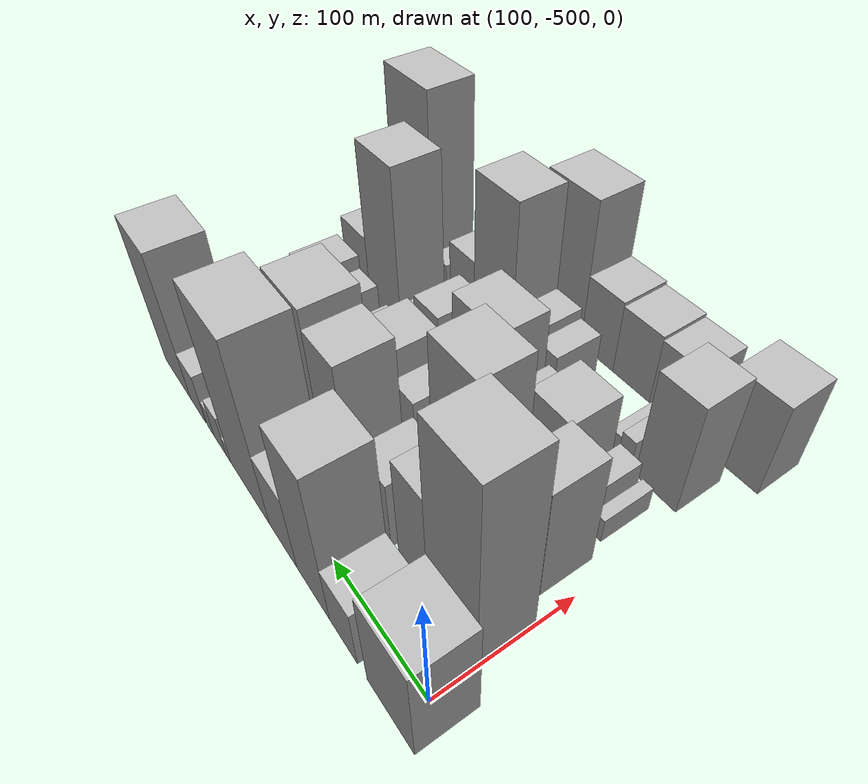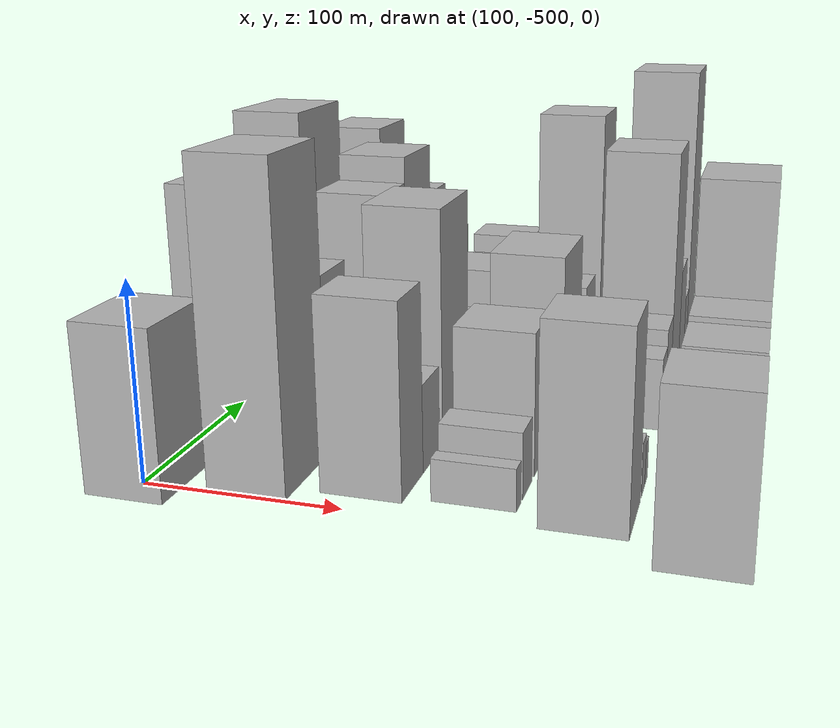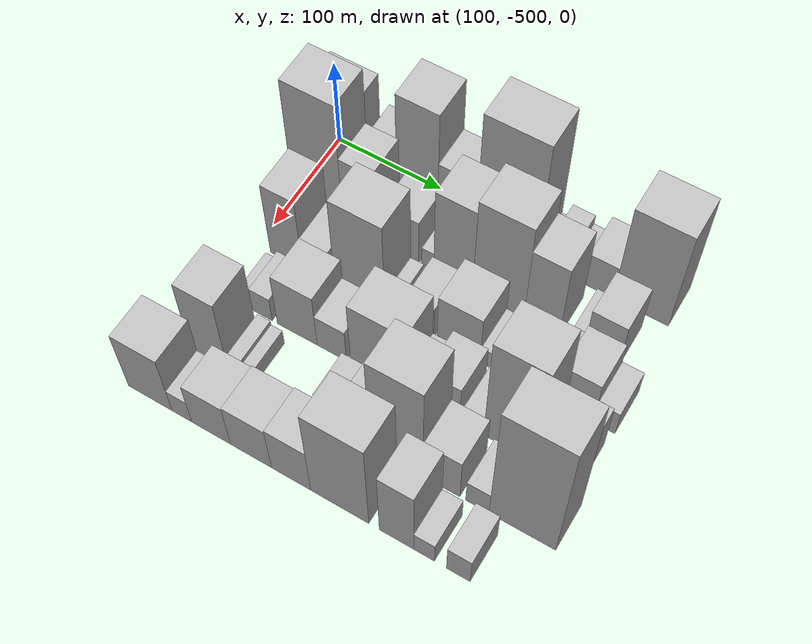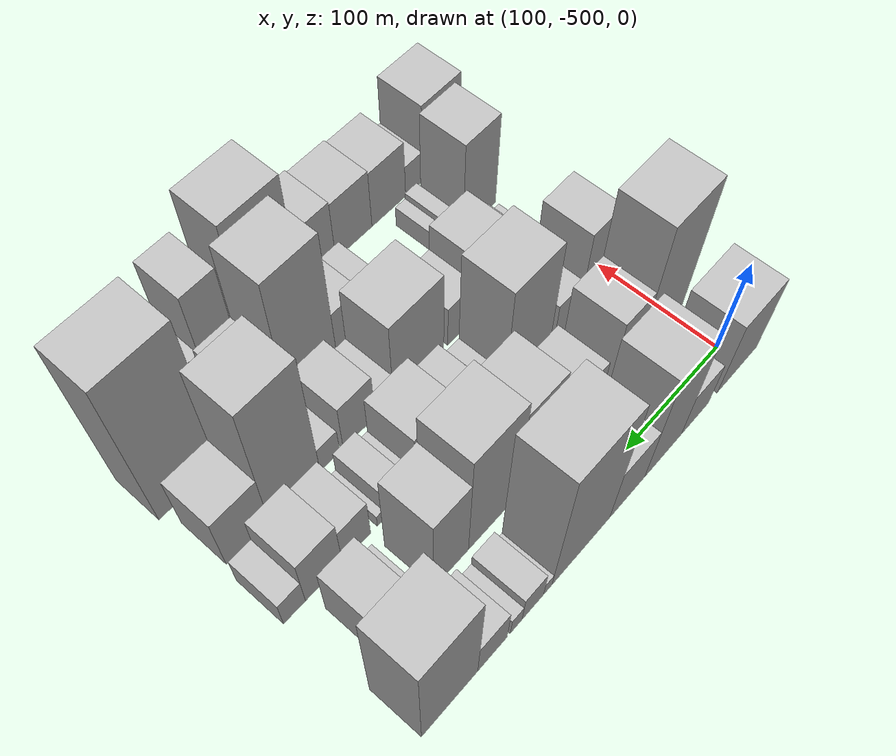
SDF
<sdf version="1.6">
 <world name="default">
  <model name="building_10">
   <static>1</static>
   <pose>100.0000 -494.5107 0 0.000000 0.000000 0.000000</pose>
   <link name="link">
    <pose>0 0 42.00 0 0 0</pose>
    <collision name="collision"><geometry><box><size>40.0000 45.6954 84.0000</size></box></geometry></collision>
    <visual name="visual">
     <cast_shadows>0</cast_shadows>
     <geometry><box><size>40.0000 45.6954 84.0000</size></box></geometry>
     <material>
      <script>
       <uri>model://HANNAS_wall/materials/scripts</uri>
       <uri>model://HANNAS_wall/materials/textures</uri>
       <name>vrc/HANNAS_wall</name>
      </script>
     </material>
    </visual>
   </link>
  </model>
  <model name="building_11">
   <static>1</static>
   <pose>100.0000 -446.4359 0 0.000000 0.000000 0.000000</pose>
   <link name="link">
    <pose>0 0 25.50 0 0 0</pose>
    <collision name="collision"><geometry><box><size>40.0000 30.4542 51.0000</size></box></geometry></collision>
    <visual name="visual">
     <cast_shadows>0</cast_shadows>
     <geometry><box><size>40.0000 30.4542 51.0000</size></box></geometry>
     <material>
      <script>
       <uri>model://HANNAS_wall/materials/scripts</uri>
       <uri>model://HANNAS_wall/materials/textures</uri>
       <name>vrc/HANNAS_wall</name>
      </script>
     </material>
    </visual>
   </link>
  </model>
  <model name="building_12">
   <static>1</static>
   <pose>100.0000 -411.5022 0 0.000000 0.000000 0.000000</pose>
   <link name="link">
    <pose>0 0 64.50 0 0 0</pose>
    <collision name="collision"><geometry><box><size>40.0000 39.4130 129.0000</size></box></geometry></collision>
    <visual name="visual">
     <cast_shadows>0</cast_shadows>
     <geometry><box><size>40.0000 39.4130 129.0000</size></box></geometry>
     <material>
      <script>
       <uri>model://HANNAS_wall/materials/scripts</uri>
       <uri>model://HANNAS_wall/materials/textures</uri>
       <name>vrc/HANNAS_wall</name>
      </script>
     </material>
    </visual>
   </link>
  </model>
  <model name="building_13">
   <static>1</static>
   <pose>100.0000 -373.6717 0 0.000000 0.000000 0.000000</pose>
   <link name="link">
    <pose>0 0 33.00 0 0 0</pose>
    <collision name="collision"><geometry><box><size>40.0000 36.2482 66.0000</size></box></geometry></collision>
    <visual name="visual">
     <cast_shadows>0</cast_shadows>
     <geometry><box><size>40.0000 36.2482 66.0000</size></box></geometry>
     <material>
      <script>
       <uri>model://HANNAS_wall/materials/scripts</uri>
       <uri>model://HANNAS_wall/materials/textures</uri>
       <name>vrc/HANNAS_wall</name>
      </script>
     </material>
    </visual>
   </link>
  </model>
  <model name="building_14">
   <static>1</static>
   <pose>100.0000 -327.0706 0 0.000000 0.000000 0.000000</pose>
   <link name="link">
    <pose>0 0 78.00 0 0 0</pose>
    <collision name="collision"><geometry><box><size>40.0000 56.9540 156.0000</size></box></geometry></collision>
    <visual name="visual">
     <cast_shadows>0</cast_shadows>
     <geometry><box><size>40.0000 56.9540 156.0000</size></box></geometry>
     <material>
      <script>
       <uri>model://HANNAS_wall/materials/scripts</uri>
       <uri>model://HANNAS_wall/materials/textures</uri>
       <name>vrc/HANNAS_wall</name>
      </script>
     </material>
    </visual>
   </link>
  </model>
  <model name="building_15">
   <static>1</static>
   <pose>100.0000 -294.5431 0 0.000000 0.000000 0.000000</pose>
   <link name="link">
    <pose>0 0 9.00 0 0 0</pose>
    <collision name="collision"><geometry><box><size>40.0000 8.1011 18.0000</size></box></geometry></collision>
    <visual name="visual">
     <cast_shadows>0</cast_shadows>
     <geometry><box><size>40.0000 8.1011 18.0000</size></box></geometry>
     <material>
      <script>
       <uri>model://HANNAS_wall/materials/scripts</uri>
       <uri>model://HANNAS_wall/materials/textures</uri>
       <name>vrc/HANNAS_wall</name>
      </script>
     </material>
    </visual>
   </link>
  </model>
  <model name="building_16">
   <static>1</static>
   <pose>100.0000 -280.3721 0 0.000000 0.000000 0.000000</pose>
   <link name="link">
    <pose>0 0 18.00 0 0 0</pose>
    <collision name="collision"><geometry><box><size>40.0000 20.2410 36.0000</size></box></geometry></collision>
    <visual name="visual">
     <cast_shadows>0</cast_shadows>
     <geometry><box><size>40.0000 20.2410 36.0000</size></box></geometry>
     <material>
      <script>
       <uri>model://HANNAS_wall/materials/scripts</uri>
       <uri>model://HANNAS_wall/materials/textures</uri>
       <name>vrc/HANNAS_wall</name>
      </script>
     </material>
    </visual>
   </link>
  </model>
  <model name="building_17">
   <static>1</static>
   <pose>100.0000 -264.9043 0 0.000000 0.000000 0.000000</pose>
   <link name="link">
    <pose>0 0 12.00 0 0 0</pose>
    <collision name="collision"><geometry><box><size>40.0000 10.6945 24.0000</size></box></geometry></collision>
    <visual name="visual">
     <cast_shadows>0</cast_shadows>
     <geometry><box><size>40.0000 10.6945 24.0000</size></box></geometry>
     <material>
      <script>
       <uri>model://HANNAS_wall/materials/scripts</uri>
       <uri>model://HANNAS_wall/materials/textures</uri>
       <name>vrc/HANNAS_wall</name>
      </script>
     </material>
    </visual>
   </link>
  </model>
  <model name="building_18">
   <static>1</static>
   <pose>100.0000 -243.2661 0 0.000000 0.000000 0.000000</pose>
   <link name="link">
    <pose>0 0 22.50 0 0 0</pose>
    <collision name="collision"><geometry><box><size>40.0000 26.5818 45.0000</size></box></geometry></collision>
    <visual name="visual">
     <cast_shadows>0</cast_shadows>
     <geometry><box><size>40.0000 26.5818 45.0000</size></box></geometry>
     <material>
      <script>
       <uri>model://HANNAS_wall/materials/scripts</uri>
       <uri>model://HANNAS_wall/materials/textures</uri>
       <name>vrc/HANNAS_wall</name>
      </script>
     </material>
    </visual>
   </link>
  </model>
  <model name="building_19">
   <static>1</static>
   <pose>100.0000 -205.5943 0 0.000000 0.000000 0.000000</pose>
   <link name="link">
    <pose>0 0 64.50 0 0 0</pose>
    <collision name="collision"><geometry><box><size>40.0000 48.7619 129.0000</size></box></geometry></collision>
    <visual name="visual">
     <cast_shadows>0</cast_shadows>
     <geometry><box><size>40.0000 48.7619 129.0000</size></box></geometry>
     <material>
      <script>
       <uri>model://HANNAS_wall/materials/scripts</uri>
       <uri>model://HANNAS_wall/materials/textures</uri>
       <name>vrc/HANNAS_wall</name>
      </script>
     </material>
    </visual>
   </link>
  </model>
  <model name="building_61">
   <static>1</static>
   <pose>152.0000 -474.8754 0 0.000000 0.000000 0.000000</pose>
   <link name="link">
    <pose>0 0 79.50 0 0 0</pose>
    <collision name="collision"><geometry><box><size>40.0000 47.7807 159.0000</size></box></geometry></collision>
    <visual name="visual">
     <cast_shadows>0</cast_shadows>
     <geometry><box><size>40.0000 47.7807 159.0000</size></box></geometry>
     <material>
      <script>
       <uri>model://HANNAS_wall/materials/scripts</uri>
       <uri>model://HANNAS_wall/materials/textures</uri>
       <name>vrc/HANNAS_wall</name>
      </script>
     </material>
    </visual>
   </link>
  </model>
  <model name="building_62">
   <static>1</static>
   <pose>152.0000 -436.0417 0 0.000000 0.000000 0.000000</pose>
   <link name="link">
    <pose>0 0 46.50 0 0 0</pose>
    <collision name="collision"><geometry><box><size>40.0000 29.8868 93.0000</size></box></geometry></collision>
    <visual name="visual">
     <cast_shadows>0</cast_shadows>
     <geometry><box><size>40.0000 29.8868 93.0000</size></box></geometry>
     <material>
      <script>
       <uri>model://HANNAS_wall/materials/scripts</uri>
       <uri>model://HANNAS_wall/materials/textures</uri>
       <name>vrc/HANNAS_wall</name>
      </script>
     </material>
    </visual>
   </link>
  </model>
  <model name="building_63">
   <static>1</static>
   <pose>152.0000 -395.5219 0 0.000000 0.000000 0.000000</pose>
   <link name="link">
    <pose>0 0 30.00 0 0 0</pose>
    <collision name="collision"><geometry><box><size>40.0000 33.1527 60.0000</size></box></geometry></collision>
    <visual name="visual">
     <cast_shadows>0</cast_shadows>
     <geometry><box><size>40.0000 33.1527 60.0000</size></box></geometry>
     <material>
      <script>
       <uri>model://HANNAS_wall/materials/scripts</uri>
       <uri>model://HANNAS_wall/materials/textures</uri>
       <name>vrc/HANNAS_wall</name>
      </script>
     </material>
    </visual>
   </link>
  </model>
  <model name="building_64">
   <static>1</static>
   <pose>152.0000 -370.3888 0 0.000000 0.000000 0.000000</pose>
   <link name="link">
    <pose>0 0 13.50 0 0 0</pose>
    <collision name="collision"><geometry><box><size>40.0000 11.1135 27.0000</size></box></geometry></collision>
    <visual name="visual">
     <cast_shadows>0</cast_shadows>
     <geometry><box><size>40.0000 11.1135 27.0000</size></box></geometry>
     <material>
      <script>
       <uri>model://HANNAS_wall/materials/scripts</uri>
       <uri>model://HANNAS_wall/materials/textures</uri>
       <name>vrc/HANNAS_wall</name>
      </script>
     </material>
    </visual>
   </link>
  </model>
  <model name="building_65">
   <static>1</static>
   <pose>152.0000 -346.8798 0 0.000000 0.000000 0.000000</pose>
   <link name="link">
    <pose>0 0 57.00 0 0 0</pose>
    <collision name="collision"><geometry><box><size>40.0000 35.9045 114.0000</size></box></geometry></collision>
    <visual name="visual">
     <cast_shadows>0</cast_shadows>
     <geometry><box><size>40.0000 35.9045 114.0000</size></box></geometry>
     <material>
      <script>
       <uri>model://HANNAS_wall/materials/scripts</uri>
       <uri>model://HANNAS_wall/materials/textures</uri>
       <name>vrc/HANNAS_wall</name>
      </script>
     </material>
    </visual>
   </link>
  </model>
  <model name="building_66">
   <static>1</static>
   <pose>152.0000 -305.6294 0 0.000000 0.000000 0.000000</pose>
   <link name="link">
    <pose>0 0 64.50 0 0 0</pose>
    <collision name="collision"><geometry><box><size>40.0000 46.5963 129.0000</size></box></geometry></collision>
    <visual name="visual">
     <cast_shadows>0</cast_shadows>
     <geometry><box><size>40.0000 46.5963 129.0000</size></box></geometry>
     <material>
      <script>
       <uri>model://HANNAS_wall/materials/scripts</uri>
       <uri>model://HANNAS_wall/materials/textures</uri>
       <name>vrc/HANNAS_wall</name>
      </script>
     </material>
    </visual>
   </link>
  </model>
  <model name="building_67">
   <static>1</static>
   <pose>152.0000 -266.3999 0 0.000000 0.000000 0.000000</pose>
   <link name="link">
    <pose>0 0 49.50 0 0 0</pose>
    <collision name="collision"><geometry><box><size>40.0000 31.8627 99.0000</size></box></geometry></collision>
    <visual name="visual">
     <cast_shadows>0</cast_shadows>
     <geometry><box><size>40.0000 31.8627 99.0000</size></box></geometry>
     <material>
      <script>
       <uri>model://HANNAS_wall/materials/scripts</uri>
       <uri>model://HANNAS_wall/materials/textures</uri>
       <name>vrc/HANNAS_wall</name>
      </script>
     </material>
    </visual>
   </link>
  </model>
  <model name="building_68">
   <static>1</static>
   <pose>152.0000 -234.6018 0 0.000000 0.000000 0.000000</pose>
   <link name="link">
    <pose>0 0 12.00 0 0 0</pose>
    <collision name="collision"><geometry><box><size>40.0000 11.7334 24.0000</size></box></geometry></collision>
    <visual name="visual">
     <cast_shadows>0</cast_shadows>
     <geometry><box><size>40.0000 11.7334 24.0000</size></box></geometry>
     <material>
      <script>
       <uri>model://HANNAS_wall/materials/scripts</uri>
       <uri>model://HANNAS_wall/materials/textures</uri>
       <name>vrc/HANNAS_wall</name>
      </script>
     </material>
    </visual>
   </link>
  </model>
  <model name="building_69">
   <static>1</static>
   <pose>152.0000 -213.7087 0 0.000000 0.000000 0.000000</pose>
   <link name="link">
    <pose>0 0 30.00 0 0 0</pose>
    <collision name="collision"><geometry><box><size>40.0000 30.0528 60.0000</size></box></geometry></collision>
    <visual name="visual">
     <cast_shadows>0</cast_shadows>
     <geometry><box><size>40.0000 30.0528 60.0000</size></box></geometry>
     <material>
      <script>
       <uri>model://HANNAS_wall/materials/scripts</uri>
       <uri>model://HANNAS_wall/materials/textures</uri>
       <name>vrc/HANNAS_wall</name>
      </script>
     </material>
    </visual>
   </link>
  </model>
  <model name="building_110">
   <static>1</static>
   <pose>204.0000 -472.2299 0 0.000000 0.000000 0.000000</pose>
   <link name="link">
    <pose>0 0 48.00 0 0 0</pose>
    <collision name="collision"><geometry><box><size>40.0000 30.7741 96.0000</size></box></geometry></collision>
    <visual name="visual">
     <cast_shadows>0</cast_shadows>
     <geometry><box><size>40.0000 30.7741 96.0000</size></box></geometry>
     <material>
      <script>
       <uri>model://HANNAS_wall/materials/scripts</uri>
       <uri>model://HANNAS_wall/materials/textures</uri>
       <name>vrc/HANNAS_wall</name>
      </script>
     </material>
    </visual>
   </link>
  </model>
  <model name="building_111">
   <static>1</static>
   <pose>204.0000 -443.8031 0 0.000000 0.000000 0.000000</pose>
   <link name="link">
    <pose>0 0 22.50 0 0 0</pose>
    <collision name="collision"><geometry><box><size>40.0000 26.0795 45.0000</size></box></geometry></collision>
    <visual name="visual">
     <cast_shadows>0</cast_shadows>
     <geometry><box><size>40.0000 26.0795 45.0000</size></box></geometry>
     <material>
      <script>
       <uri>model://HANNAS_wall/materials/scripts</uri>
       <uri>model://HANNAS_wall/materials/textures</uri>
       <name>vrc/HANNAS_wall</name>
      </script>
     </material>
    </visual>
   </link>
  </model>
  <model name="building_112">
   <static>1</static>
   <pose>204.0000 -402.4470 0 0.000000 0.000000 0.000000</pose>
   <link name="link">
    <pose>0 0 61.50 0 0 0</pose>
    <collision name="collision"><geometry><box><size>40.0000 46.6326 123.0000</size></box></geometry></collision>
    <visual name="visual">
     <cast_shadows>0</cast_shadows>
     <geometry><box><size>40.0000 46.6326 123.0000</size></box></geometry>
     <material>
      <script>
       <uri>model://HANNAS_wall/materials/scripts</uri>
       <uri>model://HANNAS_wall/materials/textures</uri>
       <name>vrc/HANNAS_wall</name>
      </script>
     </material>
    </visual>
   </link>
  </model>
  <model name="building_113">
   <static>1</static>
   <pose>204.0000 -373.0540 0 0.000000 0.000000 0.000000</pose>
   <link name="link">
    <pose>0 0 13.50 0 0 0</pose>
    <collision name="collision"><geometry><box><size>40.0000 12.1534 27.0000</size></box></geometry></collision>
    <visual name="visual">
     <cast_shadows>0</cast_shadows>
     <geometry><box><size>40.0000 12.1534 27.0000</size></box></geometry>
     <material>
      <script>
       <uri>model://HANNAS_wall/materials/scripts</uri>
       <uri>model://HANNAS_wall/materials/textures</uri>
       <name>vrc/HANNAS_wall</name>
      </script>
     </material>
    </visual>
   </link>
  </model>
  <model name="building_114">
   <static>1</static>
   <pose>204.0000 -363.1214 0 0.000000 0.000000 0.000000</pose>
   <link name="link">
    <pose>0 0 9.00 0 0 0</pose>
    <collision name="collision"><geometry><box><size>40.0000 7.7119 18.0000</size></box></geometry></collision>
    <visual name="visual">
     <cast_shadows>0</cast_shadows>
     <geometry><box><size>40.0000 7.7119 18.0000</size></box></geometry>
     <material>
      <script>
       <uri>model://HANNAS_wall/materials/scripts</uri>
       <uri>model://HANNAS_wall/materials/textures</uri>
       <name>vrc/HANNAS_wall</name>
      </script>
     </material>
    </visual>
   </link>
  </model>
  <model name="building_115">
   <static>1</static>
   <pose>204.0000 -346.7055 0 0.000000 0.000000 0.000000</pose>
   <link name="link">
    <pose>0 0 22.50 0 0 0</pose>
    <collision name="collision"><geometry><box><size>40.0000 25.1198 45.0000</size></box></geometry></collision>
    <visual name="visual">
     <cast_shadows>0</cast_shadows>
     <geometry><box><size>40.0000 25.1198 45.0000</size></box></geometry>
     <material>
      <script>
       <uri>model://HANNAS_wall/materials/scripts</uri>
       <uri>model://HANNAS_wall/materials/textures</uri>
       <name>vrc/HANNAS_wall</name>
      </script>
     </material>
    </visual>
   </link>
  </model>
  <model name="building_116">
   <static>1</static>
   <pose>204.0000 -311.8279 0 0.000000 0.000000 0.000000</pose>
   <link name="link">
    <pose>0 0 33.00 0 0 0</pose>
    <collision name="collision"><geometry><box><size>40.0000 38.6355 66.0000</size></box></geometry></collision>
    <visual name="visual">
     <cast_shadows>0</cast_shadows>
     <geometry><box><size>40.0000 38.6355 66.0000</size></box></geometry>
     <material>
      <script>
       <uri>model://HANNAS_wall/materials/scripts</uri>
       <uri>model://HANNAS_wall/materials/textures</uri>
       <name>vrc/HANNAS_wall</name>
      </script>
     </material>
    </visual>
   </link>
  </model>
  <model name="building_117">
   <static>1</static>
   <pose>204.0000 -287.5956 0 0.000000 0.000000 0.000000</pose>
   <link name="link">
    <pose>0 0 12.00 0 0 0</pose>
    <collision name="collision"><geometry><box><size>40.0000 9.8291 24.0000</size></box></geometry></collision>
    <visual name="visual">
     <cast_shadows>0</cast_shadows>
     <geometry><box><size>40.0000 9.8291 24.0000</size></box></geometry>
     <material>
      <script>
       <uri>model://HANNAS_wall/materials/scripts</uri>
       <uri>model://HANNAS_wall/materials/textures</uri>
       <name>vrc/HANNAS_wall</name>
      </script>
     </material>
    </visual>
   </link>
  </model>
  <model name="building_118">
   <static>1</static>
   <pose>204.0000 -272.8367 0 0.000000 0.000000 0.000000</pose>
   <link name="link">
    <pose>0 0 19.50 0 0 0</pose>
    <collision name="collision"><geometry><box><size>40.0000 19.6886 39.0000</size></box></geometry></collision>
    <visual name="visual">
     <cast_shadows>0</cast_shadows>
     <geometry><box><size>40.0000 19.6886 39.0000</size></box></geometry>
     <material>
      <script>
       <uri>model://HANNAS_wall/materials/scripts</uri>
       <uri>model://HANNAS_wall/materials/textures</uri>
       <name>vrc/HANNAS_wall</name>
      </script>
     </material>
    </visual>
   </link>
  </model>
  <model name="building_119">
   <static>1</static>
   <pose>204.0000 -259.9211 0 0.000000 0.000000 0.000000</pose>
   <link name="link">
    <pose>0 0 7.50 0 0 0</pose>
    <collision name="collision"><geometry><box><size>40.0000 6.1426 15.0000</size></box></geometry></collision>
    <visual name="visual">
     <cast_shadows>0</cast_shadows>
     <geometry><box><size>40.0000 6.1426 15.0000</size></box></geometry>
     <material>
      <script>
       <uri>model://HANNAS_wall/materials/scripts</uri>
       <uri>model://HANNAS_wall/materials/textures</uri>
       <name>vrc/HANNAS_wall</name>
      </script>
     </material>
    </visual>
   </link>
  </model>
  <model name="building_120">
   <static>1</static>
   <pose>204.0000 -238.3190 0 0.000000 0.000000 0.000000</pose>
   <link name="link">
    <pose>0 0 24.00 0 0 0</pose>
    <collision name="collision"><geometry><box><size>40.0000 25.0618 48.0000</size></box></geometry></collision>
    <visual name="visual">
     <cast_shadows>0</cast_shadows>
     <geometry><box><size>40.0000 25.0618 48.0000</size></box></geometry>
     <material>
      <script>
       <uri>model://HANNAS_wall/materials/scripts</uri>
       <uri>model://HANNAS_wall/materials/textures</uri>
       <name>vrc/HANNAS_wall</name>
      </script>
     </material>
    </visual>
   </link>
  </model>
  <model name="building_121">
   <static>1</static>
   <pose>204.0000 -209.8506 0 0.000000 0.000000 0.000000</pose>
   <link name="link">
    <pose>0 0 30.00 0 0 0</pose>
    <collision name="collision"><geometry><box><size>40.0000 31.8751 60.0000</size></box></geometry></collision>
    <visual name="visual">
     <cast_shadows>0</cast_shadows>
     <geometry><box><size>40.0000 31.8751 60.0000</size></box></geometry>
     <material>
      <script>
       <uri>model://HANNAS_wall/materials/scripts</uri>
       <uri>model://HANNAS_wall/materials/textures</uri>
       <name>vrc/HANNAS_wall</name>
      </script>
     </material>
    </visual>
   </link>
  </model>
  <model name="building_122">
   <static>1</static>
   <pose>204.0000 -184.7067 0 0.000000 0.000000 0.000000</pose>
   <link name="link">
    <pose>0 0 16.50 0 0 0</pose>
    <collision name="collision"><geometry><box><size>40.0000 18.4126 33.0000</size></box></geometry></collision>
    <visual name="visual">
     <cast_shadows>0</cast_shadows>
     <geometry><box><size>40.0000 18.4126 33.0000</size></box></geometry>
     <material>
      <script>
       <uri>model://HANNAS_wall/materials/scripts</uri>
       <uri>model://HANNAS_wall/materials/textures</uri>
       <name>vrc/HANNAS_wall</name>
      </script>
     </material>
    </visual>
   </link>
  </model>
  <model name="building_164">
   <static>1</static>
   <pose>256.0000 -477.5440 0 0.000000 0.000000 0.000000</pose>
   <link name="link">
    <pose>0 0 10.50 0 0 0</pose>
    <collision name="collision"><geometry><box><size>40.0000 8.9986 21.0000</size></box></geometry></collision>
    <visual name="visual">
     <cast_shadows>0</cast_shadows>
     <geometry><box><size>40.0000 8.9986 21.0000</size></box></geometry>
     <material>
      <script>
       <uri>model://HANNAS_wall/materials/scripts</uri>
       <uri>model://HANNAS_wall/materials/textures</uri>
       <name>vrc/HANNAS_wall</name>
      </script>
     </material>
    </visual>
   </link>
  </model>
  <model name="building_165">
   <static>1</static>
   <pose>256.0000 -460.6285 0 0.000000 0.000000 0.000000</pose>
   <link name="link">
    <pose>0 0 16.50 0 0 0</pose>
    <collision name="collision"><geometry><box><size>40.0000 18.8326 33.0000</size></box></geometry></collision>
    <visual name="visual">
     <cast_shadows>0</cast_shadows>
     <geometry><box><size>40.0000 18.8326 33.0000</size></box></geometry>
     <material>
      <script>
       <uri>model://HANNAS_wall/materials/scripts</uri>
       <uri>model://HANNAS_wall/materials/textures</uri>
       <name>vrc/HANNAS_wall</name>
      </script>
     </material>
    </visual>
   </link>
  </model>
  <model name="building_166">
   <static>1</static>
   <pose>256.0000 -427.6216 0 0.000000 0.000000 0.000000</pose>
   <link name="link">
    <pose>0 0 36.00 0 0 0</pose>
    <collision name="collision"><geometry><box><size>40.0000 37.1812 72.0000</size></box></geometry></collision>
    <visual name="visual">
     <cast_shadows>0</cast_shadows>
     <geometry><box><size>40.0000 37.1812 72.0000</size></box></geometry>
     <material>
      <script>
       <uri>model://HANNAS_wall/materials/scripts</uri>
       <uri>model://HANNAS_wall/materials/textures</uri>
       <name>vrc/HANNAS_wall</name>
      </script>
     </material>
    </visual>
   </link>
  </model>
  <model name="building_167">
   <static>1</static>
   <pose>256.0000 -395.5468 0 0.000000 0.000000 0.000000</pose>
   <link name="link">
    <pose>0 0 22.50 0 0 0</pose>
    <collision name="collision"><geometry><box><size>40.0000 26.9684 45.0000</size></box></geometry></collision>
    <visual name="visual">
     <cast_shadows>0</cast_shadows>
     <geometry><box><size>40.0000 26.9684 45.0000</size></box></geometry>
     <material>
      <script>
       <uri>model://HANNAS_wall/materials/scripts</uri>
       <uri>model://HANNAS_wall/materials/textures</uri>
       <name>vrc/HANNAS_wall</name>
      </script>
     </material>
    </visual>
   </link>
  </model>
  <model name="building_168">
   <static>1</static>
   <pose>256.0000 -353.1212 0 0.000000 0.000000 0.000000</pose>
   <link name="link">
    <pose>0 0 45.00 0 0 0</pose>
    <collision name="collision"><geometry><box><size>40.0000 49.8828 90.0000</size></box></geometry></collision>
    <visual name="visual">
     <cast_shadows>0</cast_shadows>
     <geometry><box><size>40.0000 49.8828 90.0000</size></box></geometry>
     <material>
      <script>
       <uri>model://HANNAS_wall/materials/scripts</uri>
       <uri>model://HANNAS_wall/materials/textures</uri>
       <name>vrc/HANNAS_wall</name>
      </script>
     </material>
    </visual>
   </link>
  </model>
  <model name="building_169">
   <static>1</static>
   <pose>256.0000 -319.5101 0 0.000000 0.000000 0.000000</pose>
   <link name="link">
    <pose>0 0 16.50 0 0 0</pose>
    <collision name="collision"><geometry><box><size>40.0000 17.3394 33.0000</size></box></geometry></collision>
    <visual name="visual">
     <cast_shadows>0</cast_shadows>
     <geometry><box><size>40.0000 17.3394 33.0000</size></box></geometry>
     <material>
      <script>
       <uri>model://HANNAS_wall/materials/scripts</uri>
       <uri>model://HANNAS_wall/materials/textures</uri>
       <name>vrc/HANNAS_wall</name>
      </script>
     </material>
    </visual>
   </link>
  </model>
  <model name="building_170">
   <static>1</static>
   <pose>256.0000 -295.8602 0 0.000000 0.000000 0.000000</pose>
   <link name="link">
    <pose>0 0 27.00 0 0 0</pose>
    <collision name="collision"><geometry><box><size>40.0000 29.9603 54.0000</size></box></geometry></collision>
    <visual name="visual">
     <cast_shadows>0</cast_shadows>
     <geometry><box><size>40.0000 29.9603 54.0000</size></box></geometry>
     <material>
      <script>
       <uri>model://HANNAS_wall/materials/scripts</uri>
       <uri>model://HANNAS_wall/materials/textures</uri>
       <name>vrc/HANNAS_wall</name>
      </script>
     </material>
    </visual>
   </link>
  </model>
  <model name="building_171">
   <static>1</static>
   <pose>256.0000 -268.9234 0 0.000000 0.000000 0.000000</pose>
   <link name="link">
    <pose>0 0 15.00 0 0 0</pose>
    <collision name="collision"><geometry><box><size>40.0000 17.9134 30.0000</size></box></geometry></collision>
    <visual name="visual">
     <cast_shadows>0</cast_shadows>
     <geometry><box><size>40.0000 17.9134 30.0000</size></box></geometry>
     <material>
      <script>
       <uri>model://HANNAS_wall/materials/scripts</uri>
       <uri>model://HANNAS_wall/materials/textures</uri>
       <name>vrc/HANNAS_wall</name>
      </script>
     </material>
    </visual>
   </link>
  </model>
  <model name="building_172">
   <static>1</static>
   <pose>256.0000 -237.3932 0 0.000000 0.000000 0.000000</pose>
   <link name="link">
    <pose>0 0 73.50 0 0 0</pose>
    <collision name="collision"><geometry><box><size>40.0000 45.1470 147.0000</size></box></geometry></collision>
    <visual name="visual">
     <cast_shadows>0</cast_shadows>
     <geometry><box><size>40.0000 45.1470 147.0000</size></box></geometry>
     <material>
      <script>
       <uri>model://HANNAS_wall/materials/scripts</uri>
       <uri>model://HANNAS_wall/materials/textures</uri>
       <name>vrc/HANNAS_wall</name>
      </script>
     </material>
    </visual>
   </link>
  </model>
  <model name="building_173">
   <static>1</static>
   <pose>256.0000 -196.6353 0 0.000000 0.000000 0.000000</pose>
   <link name="link">
    <pose>0 0 31.50 0 0 0</pose>
    <collision name="collision"><geometry><box><size>40.0000 36.3689 63.0000</size></box></geometry></collision>
    <visual name="visual">
     <cast_shadows>0</cast_shadows>
     <geometry><box><size>40.0000 36.3689 63.0000</size></box></geometry>
     <material>
      <script>
       <uri>model://HANNAS_wall/materials/scripts</uri>
       <uri>model://HANNAS_wall/materials/textures</uri>
       <name>vrc/HANNAS_wall</name>
      </script>
     </material>
    </visual>
   </link>
  </model>
  <model name="building_213">
   <static>1</static>
   <pose>308.0000 -475.9187 0 0.000000 0.000000 0.000000</pose>
   <link name="link">
    <pose>0 0 48.00 0 0 0</pose>
    <collision name="collision"><geometry><box><size>40.0000 35.5280 96.0000</size></box></geometry></collision>
    <visual name="visual">
     <cast_shadows>0</cast_shadows>
     <geometry><box><size>40.0000 35.5280 96.0000</size></box></geometry>
     <material>
      <script>
       <uri>model://HANNAS_wall/materials/scripts</uri>
       <uri>model://HANNAS_wall/materials/textures</uri>
       <name>vrc/HANNAS_wall</name>
      </script>
     </material>
    </visual>
   </link>
  </model>
  <model name="building_214">
   <static>1</static>
   <pose>308.0000 -448.1217 0 0.000000 0.000000 0.000000</pose>
   <link name="link">
    <pose>0 0 13.50 0 0 0</pose>
    <collision name="collision"><geometry><box><size>40.0000 12.0660 27.0000</size></box></geometry></collision>
    <visual name="visual">
     <cast_shadows>0</cast_shadows>
     <geometry><box><size>40.0000 12.0660 27.0000</size></box></geometry>
     <material>
      <script>
       <uri>model://HANNAS_wall/materials/scripts</uri>
       <uri>model://HANNAS_wall/materials/textures</uri>
       <name>vrc/HANNAS_wall</name>
      </script>
     </material>
    </visual>
   </link>
  </model>
  <model name="building_215">
   <static>1</static>
   <pose>308.0000 -436.9186 0 0.000000 0.000000 0.000000</pose>
   <link name="link">
    <pose>0 0 10.50 0 0 0</pose>
    <collision name="collision"><geometry><box><size>40.0000 10.3402 21.0000</size></box></geometry></collision>
    <visual name="visual">
     <cast_shadows>0</cast_shadows>
     <geometry><box><size>40.0000 10.3402 21.0000</size></box></geometry>
     <material>
      <script>
       <uri>model://HANNAS_wall/materials/scripts</uri>
       <uri>model://HANNAS_wall/materials/textures</uri>
       <name>vrc/HANNAS_wall</name>
      </script>
     </material>
    </visual>
   </link>
  </model>
  <model name="building_216">
   <static>1</static>
   <pose>308.0000 -366.1973 0 0.000000 0.000000 0.000000</pose>
   <link name="link">
    <pose>0 0 19.50 0 0 0</pose>
    <collision name="collision"><geometry><box><size>40.0000 21.0341 39.0000</size></box></geometry></collision>
    <visual name="visual">
     <cast_shadows>0</cast_shadows>
     <geometry><box><size>40.0000 21.0341 39.0000</size></box></geometry>
     <material>
      <script>
       <uri>model://HANNAS_wall/materials/scripts</uri>
       <uri>model://HANNAS_wall/materials/textures</uri>
       <name>vrc/HANNAS_wall</name>
      </script>
     </material>
    </visual>
   </link>
  </model>
  <model name="building_217">
   <static>1</static>
   <pose>308.0000 -342.2212 0 0.000000 0.000000 0.000000</pose>
   <link name="link">
    <pose>0 0 24.00 0 0 0</pose>
    <collision name="collision"><geometry><box><size>40.0000 26.9181 48.0000</size></box></geometry></collision>
    <visual name="visual">
     <cast_shadows>0</cast_shadows>
     <geometry><box><size>40.0000 26.9181 48.0000</size></box></geometry>
     <material>
      <script>
       <uri>model://HANNAS_wall/materials/scripts</uri>
       <uri>model://HANNAS_wall/materials/textures</uri>
       <name>vrc/HANNAS_wall</name>
      </script>
     </material>
    </visual>
   </link>
  </model>
  <model name="building_218">
   <static>1</static>
   <pose>308.0000 -305.4653 0 0.000000 0.000000 0.000000</pose>
   <link name="link">
    <pose>0 0 69.00 0 0 0</pose>
    <collision name="collision"><geometry><box><size>40.0000 46.5937 138.0000</size></box></geometry></collision>
    <visual name="visual">
     <cast_shadows>0</cast_shadows>
     <geometry><box><size>40.0000 46.5937 138.0000</size></box></geometry>
     <material>
      <script>
       <uri>model://HANNAS_wall/materials/scripts</uri>
       <uri>model://HANNAS_wall/materials/textures</uri>
       <name>vrc/HANNAS_wall</name>
      </script>
     </material>
    </visual>
   </link>
  </model>
  <model name="building_219">
   <static>1</static>
   <pose>308.0000 -266.3912 0 0.000000 0.000000 0.000000</pose>
   <link name="link">
    <pose>0 0 30.00 0 0 0</pose>
    <collision name="collision"><geometry><box><size>40.0000 31.5544 60.0000</size></box></geometry></collision>
    <visual name="visual">
     <cast_shadows>0</cast_shadows>
     <geometry><box><size>40.0000 31.5544 60.0000</size></box></geometry>
     <material>
      <script>
       <uri>model://HANNAS_wall/materials/scripts</uri>
       <uri>model://HANNAS_wall/materials/textures</uri>
       <name>vrc/HANNAS_wall</name>
      </script>
     </material>
    </visual>
   </link>
  </model>
  <model name="building_220">
   <static>1</static>
   <pose>308.0000 -235.8043 0 0.000000 0.000000 0.000000</pose>
   <link name="link">
    <pose>0 0 16.50 0 0 0</pose>
    <collision name="collision"><geometry><box><size>40.0000 19.6194 33.0000</size></box></geometry></collision>
    <visual name="visual">
     <cast_shadows>0</cast_shadows>
     <geometry><box><size>40.0000 19.6194 33.0000</size></box></geometry>
     <material>
      <script>
       <uri>model://HANNAS_wall/materials/scripts</uri>
       <uri>model://HANNAS_wall/materials/textures</uri>
       <name>vrc/HANNAS_wall</name>
      </script>
     </material>
    </visual>
   </link>
  </model>
  <model name="building_221">
   <static>1</static>
   <pose>308.0000 -198.3180 0 0.000000 0.000000 0.000000</pose>
   <link name="link">
    <pose>0 0 85.50 0 0 0</pose>
    <collision name="collision"><geometry><box><size>40.0000 55.3532 171.0000</size></box></geometry></collision>
    <visual name="visual">
     <cast_shadows>0</cast_shadows>
     <geometry><box><size>40.0000 55.3532 171.0000</size></box></geometry>
     <material>
      <script>
       <uri>model://HANNAS_wall/materials/scripts</uri>
       <uri>model://HANNAS_wall/materials/textures</uri>
       <name>vrc/HANNAS_wall</name>
      </script>
     </material>
    </visual>
   </link>
  </model>
  <model name="building_258">
   <static>1</static>
   <pose>360.0000 -493.7469 0 0.000000 0.000000 0.000000</pose>
   <link name="link">
    <pose>0 0 40.50 0 0 0</pose>
    <collision name="collision"><geometry><box><size>40.0000 41.0600 81.0000</size></box></geometry></collision>
    <visual name="visual">
     <cast_shadows>0</cast_shadows>
     <geometry><box><size>40.0000 41.0600 81.0000</size></box></geometry>
     <material>
      <script>
       <uri>model://HANNAS_wall/materials/scripts</uri>
       <uri>model://HANNAS_wall/materials/textures</uri>
       <name>vrc/HANNAS_wall</name>
      </script>
     </material>
    </visual>
   </link>
  </model>
  <model name="building_259">
   <static>1</static>
   <pose>360.0000 -464.0997 0 0.000000 0.000000 0.000000</pose>
   <link name="link">
    <pose>0 0 16.50 0 0 0</pose>
    <collision name="collision"><geometry><box><size>40.0000 18.2344 33.0000</size></box></geometry></collision>
    <visual name="visual">
     <cast_shadows>0</cast_shadows>
     <geometry><box><size>40.0000 18.2344 33.0000</size></box></geometry>
     <material>
      <script>
       <uri>model://HANNAS_wall/materials/scripts</uri>
       <uri>model://HANNAS_wall/materials/textures</uri>
       <name>vrc/HANNAS_wall</name>
      </script>
     </material>
    </visual>
   </link>
  </model>
  <model name="building_260">
   <static>1</static>
   <pose>360.0000 -437.1855 0 0.000000 0.000000 0.000000</pose>
   <link name="link">
    <pose>0 0 30.00 0 0 0</pose>
    <collision name="collision"><geometry><box><size>40.0000 35.5941 60.0000</size></box></geometry></collision>
    <visual name="visual">
     <cast_shadows>0</cast_shadows>
     <geometry><box><size>40.0000 35.5941 60.0000</size></box></geometry>
     <material>
      <script>
       <uri>model://HANNAS_wall/materials/scripts</uri>
       <uri>model://HANNAS_wall/materials/textures</uri>
       <name>vrc/HANNAS_wall</name>
      </script>
     </material>
    </visual>
   </link>
  </model>
  <model name="building_261">
   <static>1</static>
   <pose>360.0000 -400.8936 0 0.000000 0.000000 0.000000</pose>
   <link name="link">
    <pose>0 0 31.50 0 0 0</pose>
    <collision name="collision"><geometry><box><size>40.0000 36.9895 63.0000</size></box></geometry></collision>
    <visual name="visual">
     <cast_shadows>0</cast_shadows>
     <geometry><box><size>40.0000 36.9895 63.0000</size></box></geometry>
     <material>
      <script>
       <uri>model://HANNAS_wall/materials/scripts</uri>
       <uri>model://HANNAS_wall/materials/textures</uri>
       <name>vrc/HANNAS_wall</name>
      </script>
     </material>
    </visual>
   </link>
  </model>
  <model name="building_262">
   <static>1</static>
   <pose>360.0000 -364.9981 0 0.000000 0.000000 0.000000</pose>
   <link name="link">
    <pose>0 0 33.00 0 0 0</pose>
    <collision name="collision"><geometry><box><size>40.0000 34.8016 66.0000</size></box></geometry></collision>
    <visual name="visual">
     <cast_shadows>0</cast_shadows>
     <geometry><box><size>40.0000 34.8016 66.0000</size></box></geometry>
     <material>
      <script>
       <uri>model://HANNAS_wall/materials/scripts</uri>
       <uri>model://HANNAS_wall/materials/textures</uri>
       <name>vrc/HANNAS_wall</name>
      </script>
     </material>
    </visual>
   </link>
  </model>
  <model name="building_263">
   <static>1</static>
   <pose>360.0000 -322.3839 0 0.000000 0.000000 0.000000</pose>
   <link name="link">
    <pose>0 0 64.50 0 0 0</pose>
    <collision name="collision"><geometry><box><size>40.0000 50.4269 129.0000</size></box></geometry></collision>
    <visual name="visual">
     <cast_shadows>0</cast_shadows>
     <geometry><box><size>40.0000 50.4269 129.0000</size></box></geometry>
     <material>
      <script>
       <uri>model://HANNAS_wall/materials/scripts</uri>
       <uri>model://HANNAS_wall/materials/textures</uri>
       <name>vrc/HANNAS_wall</name>
      </script>
     </material>
    </visual>
   </link>
  </model>
  <model name="building_264">
   <static>1</static>
   <pose>360.0000 -273.5862 0 0.000000 0.000000 0.000000</pose>
   <link name="link">
    <pose>0 0 48.00 0 0 0</pose>
    <collision name="collision"><geometry><box><size>40.0000 29.1685 96.0000</size></box></geometry></collision>
    <visual name="visual">
     <cast_shadows>0</cast_shadows>
     <geometry><box><size>40.0000 29.1685 96.0000</size></box></geometry>
     <material>
      <script>
       <uri>model://HANNAS_wall/materials/scripts</uri>
       <uri>model://HANNAS_wall/materials/textures</uri>
       <name>vrc/HANNAS_wall</name>
      </script>
     </material>
    </visual>
   </link>
  </model>
  <model name="building_265">
   <static>1</static>
   <pose>360.0000 -250.3124 0 0.000000 0.000000 0.000000</pose>
   <link name="link">
    <pose>0 0 15.00 0 0 0</pose>
    <collision name="collision"><geometry><box><size>40.0000 17.3791 30.0000</size></box></geometry></collision>
    <visual name="visual">
     <cast_shadows>0</cast_shadows>
     <geometry><box><size>40.0000 17.3791 30.0000</size></box></geometry>
     <material>
      <script>
       <uri>model://HANNAS_wall/materials/scripts</uri>
       <uri>model://HANNAS_wall/materials/textures</uri>
       <name>vrc/HANNAS_wall</name>
      </script>
     </material>
    </visual>
   </link>
  </model>
  <model name="building_266">
   <static>1</static>
   <pose>360.0000 -221.8432 0 0.000000 0.000000 0.000000</pose>
   <link name="link">
    <pose>0 0 19.50 0 0 0</pose>
    <collision name="collision"><geometry><box><size>40.0000 19.5593 39.0000</size></box></geometry></collision>
    <visual name="visual">
     <cast_shadows>0</cast_shadows>
     <geometry><box><size>40.0000 19.5593 39.0000</size></box></geometry>
     <material>
      <script>
       <uri>model://HANNAS_wall/materials/scripts</uri>
       <uri>model://HANNAS_wall/materials/textures</uri>
       <name>vrc/HANNAS_wall</name>
      </script>
     </material>
    </visual>
   </link>
  </model>
 </world>
</sdf>
